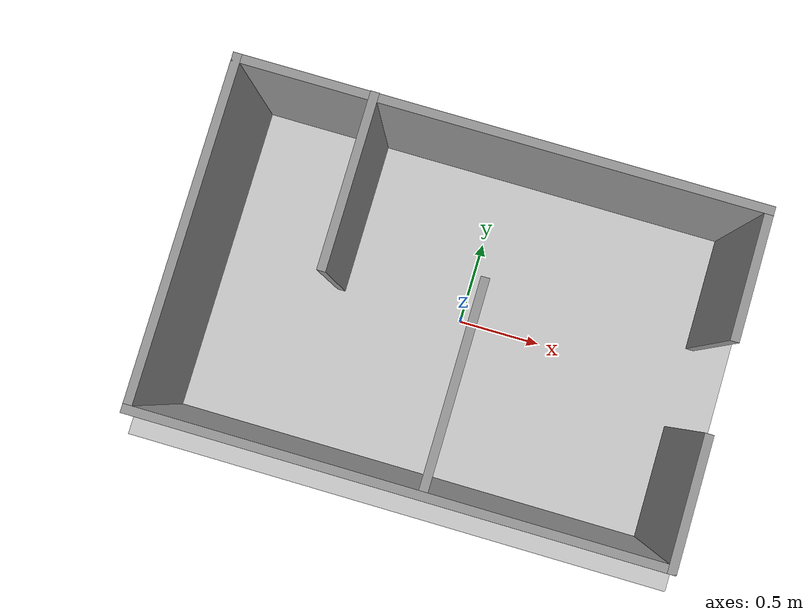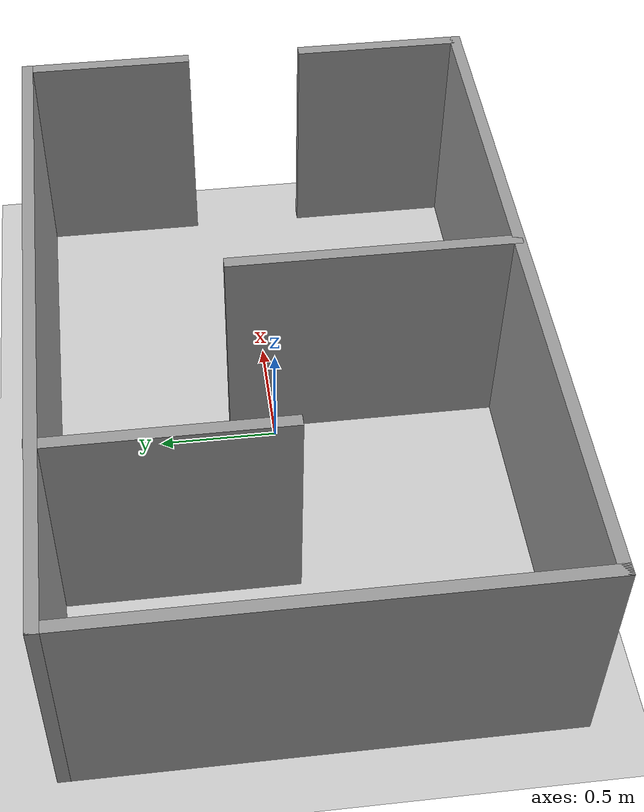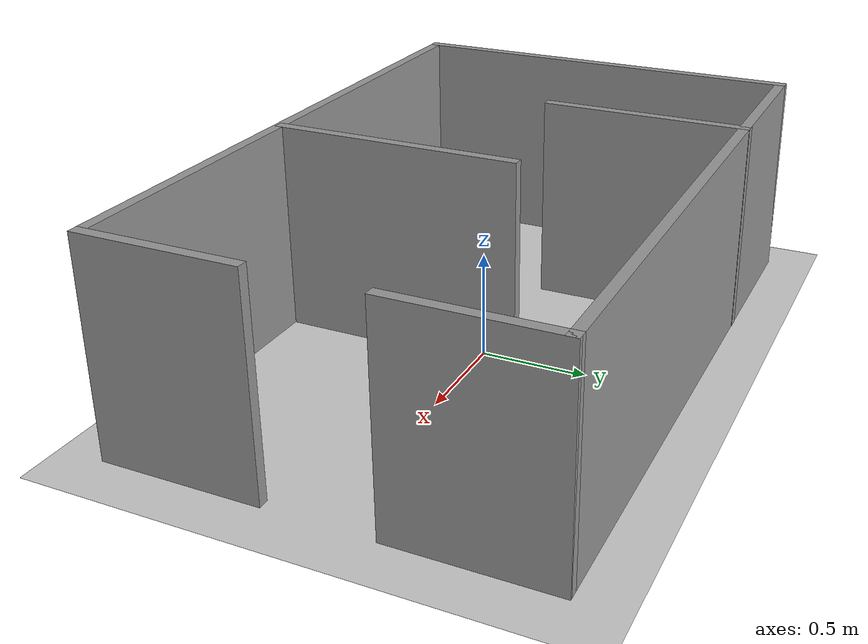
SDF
<sdf version="1.7">
 <world name="default">
  <light name="sun" type="directional">
   <pose>0 0 10 0 -0 0</pose>
   <diffuse>0.8 0.8 0.8 1</diffuse>
   <specular>0.2 0.2 0.2 1</specular>
   <attenuation>
    <range>1000</range>
    <constant>0.9</constant>
    <linear>0.01</linear>
    <quadratic>0.001</quadratic>
   </attenuation>
   <direction>-0.5 0.1 -0.9</direction>
   <spot><inner_angle>0</inner_angle><outer_angle>0</outer_angle><falloff>0</falloff></spot>
  </light>
  <model name="ground_plane">
   <static>1</static>
   <link name="link">
    <collision name="collision">
     <geometry><plane><normal>0 0 1</normal><size>100 100</size></plane></geometry>
     <surface><friction><ode><mu>100</mu><mu2>50</mu2></ode></friction></surface>
    </collision>
    <visual name="visual">
     <cast_shadows>0</cast_shadows>
     <geometry><plane><normal>0 0 1</normal><size>100 100</size></plane></geometry>
     <material>
      <script><uri>file://media/materials/scripts/gazebo.material</uri><name>Gazebo/Grey</name></script>
     </material>
    </visual>
   </link>
  </model>
  <gravity>0 0 -9.8</gravity>
  <magnetic_field>6e-06 2.3e-05 -4.2e-05</magnetic_field>
  <atmosphere type="adiabatic"/>
  <physics type="ode">
   <max_step_size>0.001</max_step_size>
   <real_time_factor>1</real_time_factor>
   <real_time_update_rate>1000</real_time_update_rate>
  </physics>
  <scene><ambient>0.4 0.4 0.4 1</ambient><background>0.7 0.7 0.7 1</background><shadows>1</shadows></scene>
  <audio><device>default</device></audio>
  <spherical_coordinates>
   <surface_model>EARTH_WGS84</surface_model>
   <latitude_deg>0</latitude_deg>
   <longitude_deg>0</longitude_deg>
   <elevation>0</elevation>
   <heading_deg>0</heading_deg>
  </spherical_coordinates>
  <model name="warehouse">
   <pose>-0.059916 -0.01727 0 0 -0 0</pose>
   <link name="Wall_30">
    <collision name="Wall_30_Collision">
     <geometry><box><size>3 0.05 1</size></box></geometry>
     <pose>0 0 0.5 0 -0 0</pose>
    </collision>
    <visual name="Wall_30_Visual">
     <pose>0 0 0.5 0 -0 0</pose>
     <geometry><box><size>3 0.05 1</size></box></geometry>
     <material>
      <script><uri>file://media/materials/scripts/gazebo.material</uri><name>Gazebo/Grey</name></script>
      <ambient>1 1 1 1</ambient>
     </material>
     <meta><layer>0</layer></meta>
    </visual>
    <pose>0 0.974 0 0 -0 0</pose>
   </link>
   <link name="Wall_32">
    <collision name="Wall_32_Collision">
     <geometry><box><size>2 0.05 1</size></box></geometry>
     <pose>0 0 0.5 0 -0 0</pose>
    </collision>
    <visual name="Wall_32_Visual">
     <pose>0 0 0.5 0 -0 0</pose>
     <geometry><box><size>2 0.05 1</size></box></geometry>
     <material>
      <script><uri>file://media/materials/scripts/gazebo.material</uri><name>Gazebo/Grey</name></script>
      <ambient>1 1 1 1</ambient>
     </material>
     <meta><layer>0</layer></meta>
    </visual>
    <pose>-1.475 -0.001 0 0 -0 -1.5708</pose>
   </link>
   <link name="Wall_38">
    <collision name="Wall_38_Collision">
     <geometry><box><size>3 0.05 1</size></box></geometry>
     <pose>0 0 0.5 0 -0 0</pose>
    </collision>
    <visual name="Wall_38_Visual">
     <pose>0 0 0.5 0 -0 0</pose>
     <geometry><box><size>3 0.05 1</size></box></geometry>
     <material>
      <script><uri>file://media/materials/scripts/gazebo.material</uri><name>Gazebo/Grey</name></script>
      <ambient>1 1 1 1</ambient>
     </material>
     <meta><layer>0</layer></meta>
    </visual>
    <pose>0 -0.976 0 0 -0 0</pose>
   </link>
   <link name="Wall_40">
    <collision name="Wall_40_Collision">
     <geometry><box><size>0.75 0.05 1</size></box></geometry>
     <pose>0 0 0.5 0 -0 0</pose>
    </collision>
    <visual name="Wall_40_Visual">
     <pose>0 0 0.5 0 -0 0</pose>
     <geometry><box><size>0.75 0.05 1</size></box></geometry>
     <material>
      <script><uri>file://media/materials/scripts/gazebo.material</uri><name>Gazebo/Grey</name></script>
      <ambient>1 1 1 1</ambient>
     </material>
     <meta><layer>0</layer></meta>
    </visual>
    <pose>1.475 -0.626 0 0 -0 1.5708</pose>
   </link>
   <link name="Wall_42">
    <collision name="Wall_42_Collision">
     <geometry><box><size>0.75 0.05 1</size></box></geometry>
     <pose>0 0 0.5 0 -0 0</pose>
    </collision>
    <visual name="Wall_42_Visual">
     <pose>0 0 0.5 0 -0 0</pose>
     <geometry><box><size>0.75 0.05 1</size></box></geometry>
     <material>
      <script><uri>file://media/materials/scripts/gazebo.material</uri><name>Gazebo/Grey</name></script>
      <ambient>1 1 1 1</ambient>
     </material>
     <meta><layer>0</layer></meta>
    </visual>
    <pose>1.475 0.624 0 0 -0 -1.5708</pose>
   </link>
   <link name="Wall_44">
    <collision name="Wall_44_Collision">
     <geometry><box><size>1 0.05 1</size></box></geometry>
     <pose>0 0 0.5 0 -0 0</pose>
    </collision>
    <visual name="Wall_44_Visual">
     <pose>0 0 0.5 0 -0 0</pose>
     <geometry><box><size>1 0.05 1</size></box></geometry>
     <material>
      <script><uri>file://media/materials/scripts/gazebo.material</uri><name>Gazebo/Grey</name></script>
      <ambient>1 1 1 1</ambient>
     </material>
     <meta><layer>0</layer></meta>
    </visual>
    <pose>-0.71 0.501 0 0 -0 -1.5708</pose>
   </link>
   <link name="Wall_46">
    <collision name="Wall_46_Collision">
     <geometry><box><size>1.2 0.05 1</size></box></geometry>
     <pose>0 0 0.5 0 -0 0</pose>
    </collision>
    <visual name="Wall_46_Visual">
     <pose>0 0 0.5 0 -0 0</pose>
     <geometry><box><size>1.2 0.05 1</size></box></geometry>
     <material>
      <script><uri>file://media/materials/scripts/gazebo.material</uri><name>Gazebo/Grey</name></script>
      <ambient>1 1 1 1</ambient>
     </material>
     <meta><layer>0</layer></meta>
    </visual>
    <pose>0.13 -0.389 0 0 -0 1.5708</pose>
   </link>
   <static>1</static>
  </model>
 </world>
</sdf>
